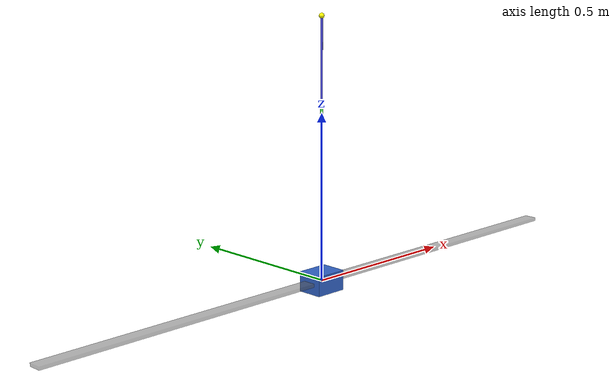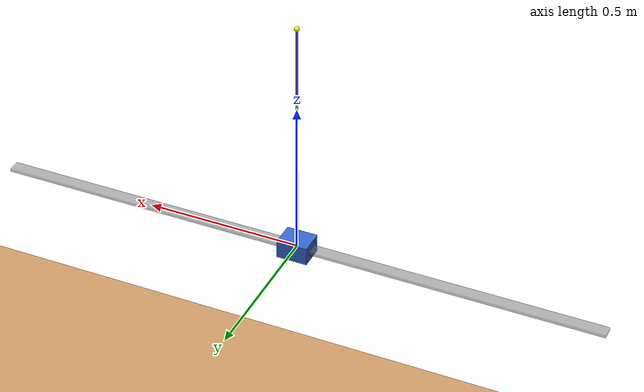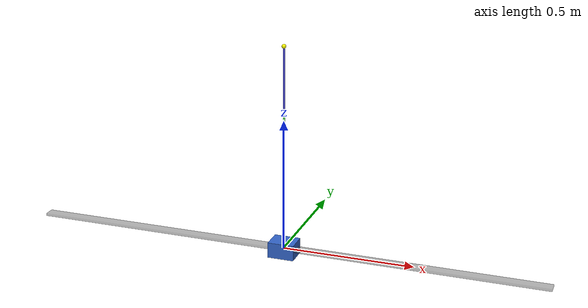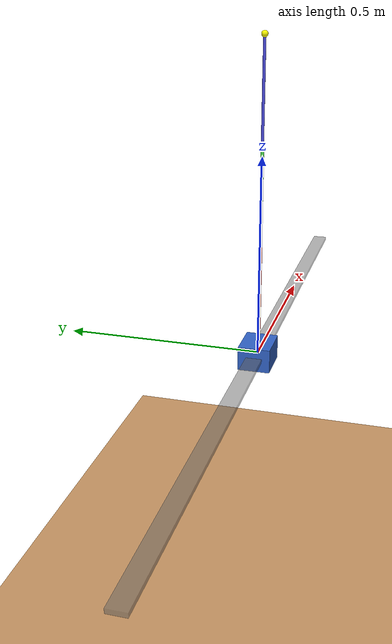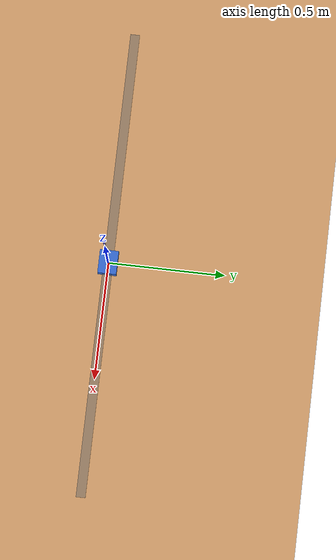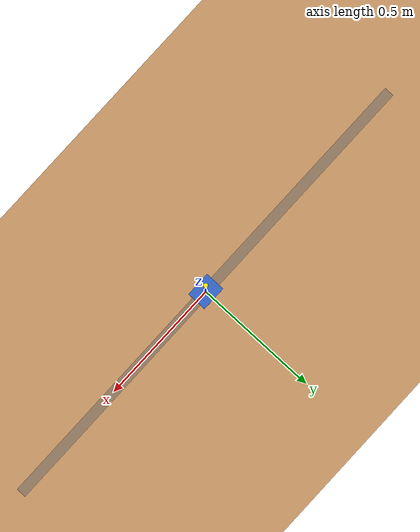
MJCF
<mujoco model="triple_pendulum_cart">
  <compiler angle="radian" coordinate="local" inertiafromgeom="true"/>

  <option integrator="RK4" timestep="0.002" gravity="0 0 -9.81"/>

  <visual>
    <global offwidth="1920" offheight="1080"/>
  </visual>

  <default>
    <joint armature="0" damping="0.001" limited="false"/>
    <geom contype="0" conaffinity="0" friction="1 0.1 0.1" rgba="0.8 0.6 0.4 1"/>
    <motor ctrlrange="-1 1" ctrllimited="true"/>
  </default>

  <asset>
    <texture type="skybox" builtin="gradient" rgb1="0.3 0.5 0.7" rgb2="0 0 0" width="512" height="512"/>
    <texture name="floor" type="2d" builtin="checker" rgb1="0.2 0.3 0.4" rgb2="0.1 0.2 0.3" width="512" height="512"/>
    <material name="floor" texture="floor" texrepeat="4 4" reflectance="0.2"/>
  </asset>

  <worldbody>
    <light directional="true" diffuse="0.7 0.7 0.7" specular="0.2 0.2 0.2" pos="0 0 2" dir="0 0 -1"/>
    <geom name="floor" type="plane" pos="0 0 -1.2" size="2 1 0.1" material="floor"/>

    <!-- Rail visualization -->
    <geom name="rail" type="box" pos="0 0 0" size="1.0 0.02 0.005" rgba="0.4 0.4 0.4 0.5"/>
    <camera name="track" mode="fixed" pos="0 -1.8 0.4" xyaxes="1 0 0 0 0 1" fovy="55"/>

    <!-- Cart -->
    <body name="cart" pos="0 0 0">
      <!-- Generous physical bound; the EFFECTIVE usable rail is enforced in the
           env via cart_limit (default 0.95, = the original limit). -->
      <joint name="slider" type="slide" axis="1 0 0" range="-1.5 1.5" damping="0.1"/>
      <geom name="cart_geom" type="box" size="0.05 0.04 0.03" mass="0.5" rgba="0.2 0.4 0.8 1"/>

      <!-- Pole 1 (lower link, attached to cart) -->
      <body name="pole1" pos="0 0 0.03">
        <joint name="hinge1" type="hinge" axis="0 1 0" damping="0.0005"/>
        <geom name="pole1_geom" type="capsule" fromto="0 0 0 0 0 0.25" size="0.005" mass="0.10" rgba="0.9 0.3 0.3 1"/>

        <!-- Pole 2 (middle link) -->
        <body name="pole2" pos="0 0 0.25">
          <joint name="hinge2" type="hinge" axis="0 1 0" damping="0.0003"/>
          <geom name="pole2_geom" type="capsule" fromto="0 0 0 0 0 0.25" size="0.004" mass="0.08" rgba="0.3 0.9 0.3 1"/>

          <!-- Pole 3 (top link) -->
          <body name="pole3" pos="0 0 0.25">
            <joint name="hinge3" type="hinge" axis="0 1 0" damping="0.0002"/>
            <geom name="pole3_geom" type="capsule" fromto="0 0 0 0 0 0.25" size="0.0035" mass="0.05" rgba="0.3 0.3 0.9 1"/>
            <site name="tip" pos="0 0 0.25" size="0.008" rgba="1 1 0 1"/>
          </body>
        </body>
      </body>
    </body>
  </worldbody>

  <actuator>
    <!-- Cart force actuator. ctrl in [-1,1] scaled by gear to a real-world force. -->
    <motor name="cart_motor" joint="slider" gear="15" ctrlrange="-1 1"/>
  </actuator>

  <sensor>
    <jointpos name="cart_pos" joint="slider"/>
    <jointvel name="cart_vel" joint="slider"/>
    <jointpos name="theta1" joint="hinge1"/>
    <jointvel name="dtheta1" joint="hinge1"/>
    <jointpos name="theta2" joint="hinge2"/>
    <jointvel name="dtheta2" joint="hinge2"/>
    <jointpos name="theta3" joint="hinge3"/>
    <jointvel name="dtheta3" joint="hinge3"/>
    <framepos name="tip_pos" objtype="site" objname="tip"/>
  </sensor>
</mujoco>
